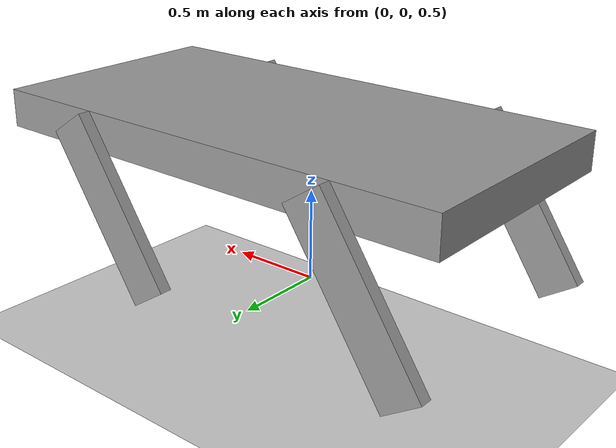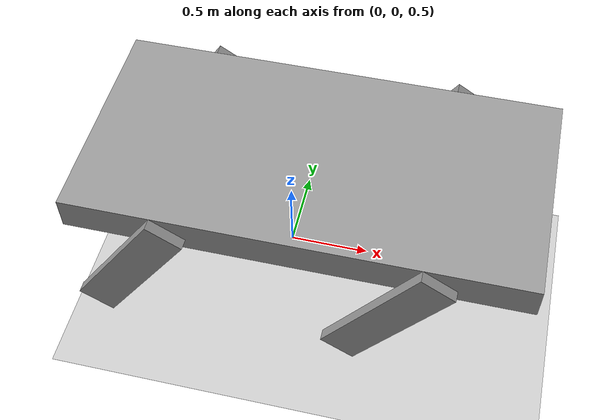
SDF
<?xml version="1.0" ?>
<sdf version="1.5">
  <world name="default">
    <!-- A global light source -->
    <include>
      <uri>model://sun</uri>
    </include>
    <!-- A ground plane -->
    <include>
      <uri>model://ground_plane</uri>
    </include>

    <physics type='ode'>
      <gravity> 0 0 0 </gravity>
    </physics>

    <model name='Simple_Quadruped'>
      <pose>0 0 1 0 0 0</pose>
      <link name='Body'>
        <pose>0.177336 0 0.303594 0 -0 0</pose>
        <inertial>
          <mass>0.789429</mass>
          <inertia>
            <ixx>0.125804</ixx>
            <ixy>0</ixy>
            <ixz>0</ixz>
            <iyy>0.501238</iyy>
            <iyz>0</iyz>
            <izz>0.621249</izz>
          </inertia>
        </inertial>
        <visual name='visual'>
          <geometry>
            <box>
              <size>2.75231 1.36686 0.209842</size>
            </box>
          </geometry>
          <material>
            <script>
              <uri>file://media/materials/scripts/gazebo.material</uri>
              <name>Gazebo/Grey</name>
            </script>
          </material>
        </visual>
        <collision name='collision'>
          <geometry>
            <box>
              <size>2.75231 1.36686 0.209842</size>
            </box>
          </geometry>
        </collision>
      </link>
      <link name='BackRightLeg'>
        <pose>-0.822065 -0.717181 -0.075896 0 0.582844 0</pose>
        <inertial>
          <mass>0.0164264</mass>
          <inertia>
            <ixx>0.00137511</ixx>
            <ixy>0</ixy>
            <ixz>0</ixz>
            <iyy>0.00144991</iyy>
            <iyz>0</iyz>
            <izz>8.72781e-05</izz>
          </inertia>
        </inertial>
        <visual name='visual'>
          <geometry>
            <box>
              <size>0.243314 0.067511 1</size>
            </box>
          </geometry>
          <material>
            <script>
              <uri>file://media/materials/scripts/gazebo.material</uri>
              <name>Gazebo/Grey</name>
            </script>
          </material>
        </visual>
        <collision name='collision'>
          <geometry>
            <box>
              <size>0.243314 0.067511 1</size>
            </box>
          </geometry>
        </collision>
      </link>
      <link name='FrontRightLeg'>
        <pose>0.733397 -0.717182 -0.075896 0 0.582844 0</pose>
        <inertial>
          <mass>0.0164264</mass>
          <inertia>
            <ixx>0.00137511</ixx>
            <ixy>0</ixy>
            <ixz>0</ixz>
            <iyy>0.00144991</iyy>
            <iyz>0</iyz>
            <izz>8.72781e-05</izz>
          </inertia>
          <pose>0 0 0 0 -0 0</pose>
        </inertial>
        <visual name='ModelPreview_1::FrontRightLeg::visual'>
          <pose>0 0 0 0 -0 0</pose>
          <geometry>
            <box>
              <size>0.243314 0.067511 1</size>
            </box>
          </geometry>
          <material>
            <script>
              <uri>file://media/materials/scripts/gazebo.material</uri>
              <name>Gazebo/Grey</name>
            </script>
          </material>
        </visual>
        <collision name='collision'>
          <geometry>
            <box>
              <size>0.243314 0.067511 1</size>
            </box>
          </geometry>
        </collision>
      </link>
      <link name='BackLeftLeg'>
        <pose>-0.822065 0.71718 -0.075896 0 0.582844 0</pose>
        <inertial>
          <mass>0.0164264</mass>
          <inertia>
            <ixx>0.00137511</ixx>
            <ixy>0</ixy>
            <ixz>0</ixz>
            <iyy>0.00144991</iyy>
            <iyz>0</iyz>
            <izz>8.72781e-05</izz>
          </inertia>
        </inertial>
        <visual name='ModelPreview_1::BackLeftLeg::visual'>
          <pose>0 0 0 0 -0 0</pose>
          <geometry>
            <box>
              <size>0.243314 0.067511 1</size>
            </box>
          </geometry>
          <material>
            <script>
              <uri>file://media/materials/scripts/gazebo.material</uri>
              <name>Gazebo/Grey</name>
            </script>
          </material>
        </visual>
        <collision name='collision'>
          <geometry>
            <box>
              <size>0.243314 0.067511 1</size>
            </box>
          </geometry>
        </collision>
      </link>
      <link name='FrontLeftLeg'>
        <pose>0.733396 0.717181 -0.075896 0 0.582844 0</pose>
        <inertial>
          <mass>0.0164264</mass>
          <inertia>
            <ixx>0.00137511</ixx>
            <ixy>0</ixy>
            <ixz>0</ixz>
            <iyy>0.00144991</iyy>
            <iyz>0</iyz>
            <izz>8.72781e-05</izz>
          </inertia>
          <pose>0 0 0 0 -0 0</pose>
        </inertial>
        <visual name='ModelPreview_1::FrontLeftLeg::visual'>
          <pose>0 0 0 0 -0 0</pose>
          <geometry>
            <box>
              <size>0.243314 0.067511 1</size>
            </box>
          </geometry>
          <material>
            <script>
              <uri>file://media/materials/scripts/gazebo.material</uri>
              <name>Gazebo/Grey</name>
            </script>
          </material>
        </visual>
        <collision name='collision'>
          <laser_retro>0</laser_retro>
          <max_contacts>10</max_contacts>
          <pose>0 0 0 0 -0 0</pose>
          <geometry>
            <box>
              <size>0.243314 0.067511 1</size>
            </box>
          </geometry>
        </collision>
      </link>
      <joint name='BackLeftJoint' type='revolute'>
        <parent>Body</parent>
        <child>BackLeftLeg</child>
        <pose>0 0 0.5 0 -0 0</pose>
        <axis>
          <xyz>0 1 0</xyz>
        </axis>
      </joint>
      <joint name='FrontRightJoint' type='revolute'>
        <parent>Body</parent>
        <child>FrontRightLeg</child>
        <pose>0 0 0.5 0 -0 0</pose>
        <axis>
          <xyz>0 1 0</xyz>
        </axis>
      </joint>
      <joint name='FrontLeftJoint' type='revolute'>
        <parent>Body</parent>
        <child>FrontLeftLeg</child>
        <pose>0 0 0.5 0 -0 0</pose>
        <axis>
          <xyz>0 1 0</xyz>
        </axis>
      </joint>
      <joint name='BackRightJoint' type='revolute'>
        <parent>Body</parent>
        <child>BackRightLeg</child>
        <pose>0 0 0.5 0 -0 0</pose>
        <axis>
          <xyz>0 1 0</xyz>
        </axis>
      </joint>

      <plugin name="SinusoidalForce" filename="libSinusoidalForcePlugin.so">
        <joint name="FrontLeftJoint">
          <min>-0.5</min>
          <max>0.5</max>
          <period>1</period>
        </joint>
        <joint name="FrontRightJoint">
          <min>-1</min>
          <max>1</max>
          <period>2</period>
        </joint>
        <joint name="BackLeftJoint">
          <min>-3</min>
          <max>3</max>
          <period>0.5</period>
        </joint>
        <joint name="BackRightJoint">
          <min>-2</min>
          <max>0</max>
          <period>0.1</period>
        </joint>
      </plugin>
    </model>

  </world>
</sdf>
